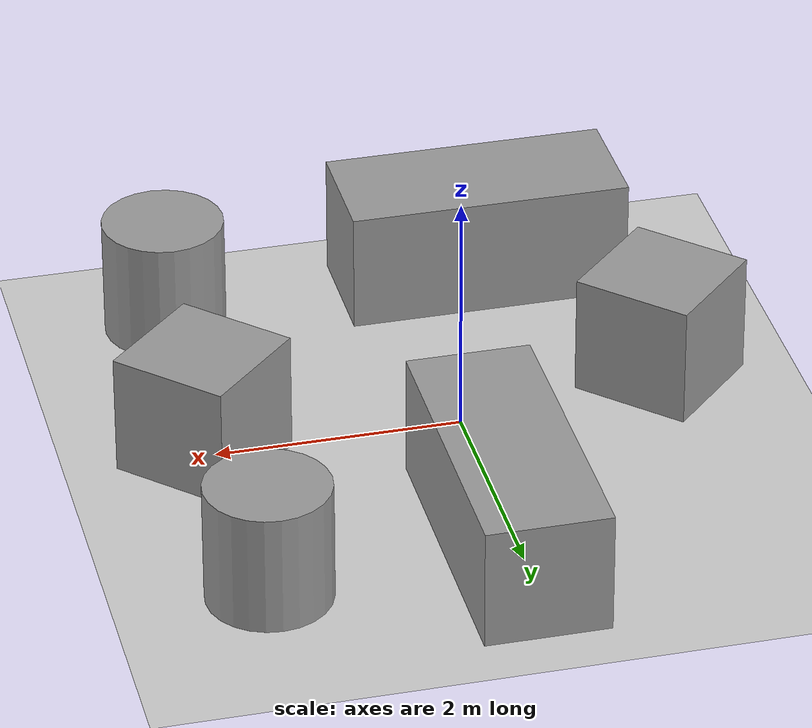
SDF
<sdf version="1.6">
 <world name="default">
  <light name="sun" type="directional">
   <pose>0 0 10 0 -0 0</pose>
   <diffuse>0.8 0.8 0.8 1</diffuse>
   <specular>0.1 0.1 0.1 1</specular>
   <attenuation>
    <range>1000</range>
    <constant>0.9</constant>
    <linear>0.01</linear>
    <quadratic>0.001</quadratic>
   </attenuation>
   <direction>-0.5 0.5 -1</direction>
  </light>
  <model name="ground_plane">
   <static>1</static>
   <link name="link">
    <collision name="collision">
     <geometry><plane><normal>0 0 1</normal><size>100 100</size></plane></geometry>
     <surface><friction><ode><mu>100</mu><mu2>50</mu2></ode></friction></surface>
    </collision>
    <visual name="visual">
     <cast_shadows>0</cast_shadows>
     <geometry><plane><normal>0 0 1</normal><size>100 100</size></plane></geometry>
     <material>
      <script><uri>file://media/materials/scripts/gazebo.material</uri><name>Gazebo/Grey</name></script>
     </material>
    </visual>
   </link>
  </model>
  <gravity>0 0 -9.8</gravity>
  <magnetic_field>6e-06 2.3e-05 -4.2e-05</magnetic_field>
  <atmosphere type="adiabatic"/>
  <physics name="default_physics" default="0" type="ode">
   <max_step_size>0.001</max_step_size>
   <real_time_factor>1</real_time_factor>
   <real_time_update_rate>1000</real_time_update_rate>
  </physics>
  <scene><ambient>0.4 0.4 0.4 1</ambient><background>0.7 0.7 0.7 1</background><shadows>1</shadows></scene>
  <spherical_coordinates>
   <surface_model>EARTH_WGS84</surface_model>
   <latitude_deg>0</latitude_deg>
   <longitude_deg>0</longitude_deg>
   <elevation>0</elevation>
   <heading_deg>0</heading_deg>
  </spherical_coordinates>
  <model name="unit_box_0">
   <pose>-0.666561 -2.11819 0.5 0 0 -1e-06</pose>
   <link name="link">
    <inertial>
     <mass>1</mass>
     <inertia>
      <ixx>0.166667</ixx>
      <ixy>0</ixy>
      <ixz>0</ixz>
      <iyy>0.166667</iyy>
      <iyz>0</iyz>
      <izz>0.166667</izz>
     </inertia>
    </inertial>
    <collision name="collision"><geometry><box><size>2.324 1 1</size></box></geometry></collision>
    <visual name="visual">
     <geometry><box><size>2.324 1 1</size></box></geometry>
     <material>
      <script><name>Gazebo/Grey</name><uri>file://media/materials/scripts/gazebo.material</uri></script>
     </material>
    </visual>
   </link>
  </model>
  <model name="unit_cylinder_0">
   <pose>2 2 0.499994 -3e-06 -2e-06 0</pose>
   <link name="link">
    <inertial>
     <mass>1</mass>
     <inertia><ixx>0.145833</ixx><ixy>0</ixy><ixz>0</ixz><iyy>0.145833</iyy><iyz>0</iyz><izz>0.125</izz></inertia>
    </inertial>
    <collision name="collision">
     <geometry><cylinder><radius>0.5</radius><length>1</length></cylinder></geometry>
    </collision>
    <visual name="visual">
     <geometry><cylinder><radius>0.5</radius><length>1</length></cylinder></geometry>
     <material>
      <script><name>Gazebo/Grey</name><uri>file://media/materials/scripts/gazebo.material</uri></script>
     </material>
    </visual>
   </link>
  </model>
  <model name="unit_box_1">
   <pose>0.082648 1.79817 0.499996 0 9e-06 0</pose>
   <link name="link">
    <inertial>
     <mass>1</mass>
     <inertia>
      <ixx>0.166667</ixx>
      <ixy>0</ixy>
      <ixz>0</ixz>
      <iyy>0.166667</iyy>
      <iyz>0</iyz>
      <izz>0.166667</izz>
     </inertia>
    </inertial>
    <collision name="collision"><geometry><box><size>1 2.49626 1</size></box></geometry></collision>
    <visual name="visual">
     <geometry><box><size>1 2.49626 1</size></box></geometry>
     <material>
      <script><name>Gazebo/Grey</name><uri>file://media/materials/scripts/gazebo.material</uri></script>
     </material>
    </visual>
   </link>
  </model>
  <model name="unit_box_2">
   <pose>-1.72941 -0.280684 0.5 0 -0 0.7854</pose>
   <link name="link">
    <inertial>
     <mass>1</mass>
     <inertia>
      <ixx>0.166667</ixx>
      <ixy>0</ixy>
      <ixz>0</ixz>
      <iyy>0.166667</iyy>
      <iyz>0</iyz>
      <izz>0.166667</izz>
     </inertia>
    </inertial>
    <collision name="collision"><geometry><box><size>1 1 1</size></box></geometry></collision>
    <visual name="visual">
     <geometry><box><size>1 1 1</size></box></geometry>
     <material>
      <script><name>Gazebo/Grey</name><uri>file://media/materials/scripts/gazebo.material</uri></script>
     </material>
    </visual>
   </link>
  </model>
  <model name="unit_cylinder_1">
   <pose>1.99982 -1.99992 0.5 0 0 -0.000787</pose>
   <link name="link">
    <inertial>
     <mass>1</mass>
     <inertia><ixx>0.145833</ixx><ixy>0</ixy><ixz>0</ixz><iyy>0.145833</iyy><iyz>0</iyz><izz>0.125</izz></inertia>
    </inertial>
    <collision name="collision">
     <geometry><cylinder><radius>0.5</radius><length>1</length></cylinder></geometry>
    </collision>
    <visual name="visual">
     <geometry><cylinder><radius>0.5</radius><length>1</length></cylinder></geometry>
     <material>
      <script><name>Gazebo/Grey</name><uri>file://media/materials/scripts/gazebo.material</uri></script>
     </material>
    </visual>
   </link>
  </model>
  <model name="unit_box_3">
   <pose>2.08853 0.005159 0.5 0 -0 0.7854</pose>
   <link name="link">
    <inertial>
     <mass>1</mass>
     <inertia>
      <ixx>0.166667</ixx>
      <ixy>0</ixy>
      <ixz>0</ixz>
      <iyy>0.166667</iyy>
      <iyz>0</iyz>
      <izz>0.166667</izz>
     </inertia>
    </inertial>
    <collision name="collision"><geometry><box><size>1 1 1</size></box></geometry></collision>
    <visual name="visual">
     <geometry><box><size>1 1 1</size></box></geometry>
     <material>
      <script><name>Gazebo/Grey</name><uri>file://media/materials/scripts/gazebo.material</uri></script>
     </material>
    </visual>
   </link>
  </model>
 </world>
</sdf>
